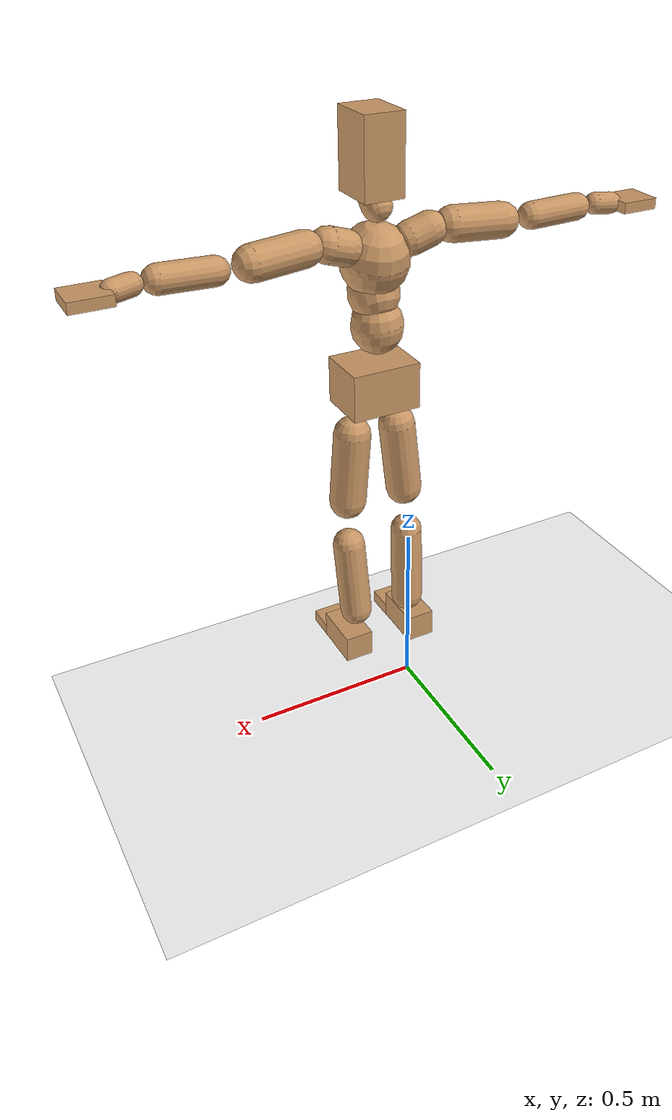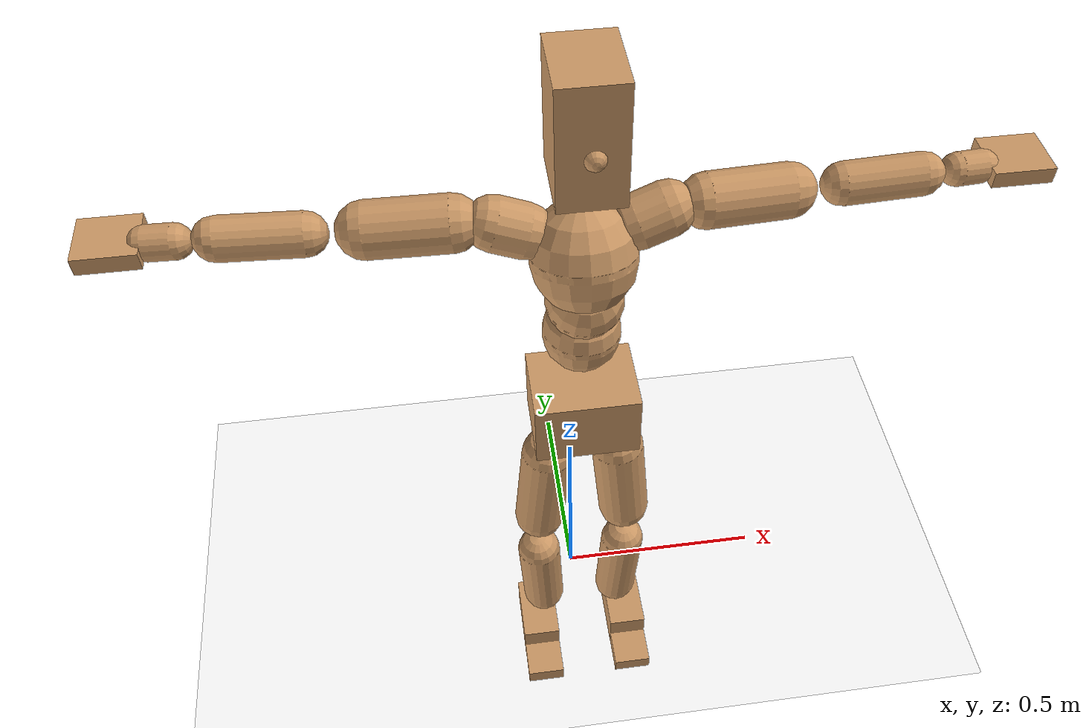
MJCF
<mujoco model="humanoid">
  <option integrator="implicitfast" />

  <visual>
    <global offwidth="1280" offheight="960" />
    <headlight active="1" ambient="0.34 0.34 0.34" diffuse="0.5 0.5 0.5" />
  </visual>

  <default>
    <joint damping="2" stiffness="2" armature="0.01" limited="true" solimplimit="0 .99 .01" />
    <geom condim="1" friction="0.7 0.005 0.0001" solimp=".99 .99 .003" solref="0.015 1" margin="0.001" rgba="0.8 0.6 .4 1" />
    <default class="smplcontact">
      <geom condim="3" friction="1. 0.005 0.0001" solref="0.015 1" solimp="0.98 0.98 0.001" priority="1" />
    </default>
    <default class="stiff_medium">
      <joint stiffness="10" />
    </default>
    <default class="stiff_medium_higher">
      <joint stiffness="50" />
    </default>
    <default class="stiff_high">
      <joint stiffness="100" />
    </default>
  </default>

  <asset>
    <texture type="skybox" builtin="gradient" rgb1="0.99 0.99 0.99" rgb2="0.608 0.828 0.892" width="100" />
    <texture builtin="flat" height="1278" mark="cross" markrgb="1 1 1" name="texgeom" random="0.01" rgb1="0.8 0.6 0.4" rgb2="0.8 0.6 0.4" type="cube" width="127" />
    <texture name="texplane" type="2d" builtin="checker" markrgb="1 1 1" rgb1="0.756 0.772 0.76" rgb2="0.6 0.6 0.6" width="100" height="100" />
    <material name="MatPlane" reflectance="0.5" texture="texplane" texrepeat="1 1" texuniform="true" />
    <material name="geom" texture="texgeom" texuniform="true" />
  </asset>

  <worldbody>
    <light name="tracking_light" pos="0 0 7" dir="0 0 -1" directional="true" cutoff="100" exponent="1" diffuse="1 1 1" specular="0.1 0.1 0.1" mode="trackcom" />
    <camera name="back" pos="0 3 2.4" xyaxes="-1 0 0 0 -1 2" mode="trackcom" />
    <camera name="side" pos="-3 0 2.4" xyaxes="0 -1 0 1 0 2" mode="trackcom" />
    <camera name="front_side" pos="-2.8 -2.8 0.8" xyaxes="0.5 -0.5 0 0.1 0.1 1" mode="trackcom" />
    <geom condim="3" name="floor" pos="0 0 0" rgba="1 1 1 1" size="100 100 .2" type="plane" material="MatPlane" />
    <body name="Pelvis" pos="-0.0018 -0.2233 0.93508" euler="90 0 0">
      <site name="Pelvis" size="0.01" />
      <freejoint name="Pelvis" />
      <geom type="box" pos="-0.0000 -0.0121 -0.0055" size="0.1069 0.0722 0.083" quat="1.0000 0.0000 0.0000 0.0000" density="3165.830099" name="Pelvis" />
      <body name="L_Hip" pos="0.0695 -0.0914 -0.0068">
        <joint name="L_Hip_x" type="hinge" pos="0 0 0" axis="1 0 0" stiffness="8.341732261904761" range="-160.0 22.92" class="stiff_medium" damping="12.446978705050496" armature="0.008254468763920438"/>
        <joint name="L_Hip_y" type="hinge" pos="0 0 0" axis="0 1 0" stiffness="8.330376904761906" range="-70.0 70.0" class="stiff_medium" damping="7.94201747582456" armature="0.007571763235616231"/>
        <joint name="L_Hip_z" type="hinge" pos="0 0 0" axis="0 0 1" stiffness="8.333033928571428" range="-28.65 90.0" class="stiff_medium" damping="8.294162655541587" armature="0.00825547270613048"/>
        <geom type="capsule" density="2040.816327" fromto="0.0069 -0.075 -0.0009 0.0274 -0.3002 -0.0036" size="0.0568875" name="L_Hip" />
        <body name="L_Knee" pos="0.0343 -0.3752 -0.0045">
          <joint name="L_Knee_x" type="hinge" pos="0 0 0" axis="1 0 0" range="-5.16 171.89" damping="6.555412535576464" armature="0.008129504383380762" stiffness="1.6519085714285715"/>
          <joint name="L_Knee_y" type="hinge" pos="0 0 0" axis="0 1 0" range="-4.58 6.88" damping="6.300997666629273" armature="0.0074570830718250995" stiffness="1.6637944761904762"/>
          <joint name="L_Knee_z" type="hinge" pos="0 0 0" axis="0 0 1" range="-6.88 4.58" damping="6.55550167999491" armature="0.008134285973594786" stiffness="1.6509824285714283"/>
          <geom type="capsule" density="1234.567901" fromto="-0.0027 -0.0796 -0.0087 -0.0109 -0.3184 -0.035" size="0.0500425" name="L_Knee" />
          <body name="L_Ankle" pos="-0.0136 -0.398 -0.0437">
            <joint name="L_Ankle_x" type="hinge" pos="0 0 0" axis="1 0 0" range="-45.84 45.84" class="stiff_medium" damping="4.629902022462091" armature="0.007523431495124429" stiffness="7.914529999999997"/>
            <joint name="L_Ankle_y" type="hinge" pos="0 0 0" axis="0 1 0" range="-74.48 22.92" class="stiff_medium" damping="2.3106454218604258" armature="0.007495471782158953" stiffness="7.914529999999997"/>
            <joint name="L_Ankle_z" type="hinge" pos="0 0 0" axis="0 0 1" range="-4.58 4.58" class="stiff_medium" damping="4.564515665454717" armature="0.007312430870879794" stiffness="7.914529999999997"/>
            <geom type="box" pos="0.0233 -0.0239 0.0242" size="0.0446775 0.04292 0.078625" quat="1.0000 0.0000 0.0000 0.0000" density="449.071558" name="L_Ankle" class="smplcontact" />
            <body name="L_Toe" pos="0.0264 -0.0558 0.1193">
              <joint name="L_Toe_x" type="hinge" pos="0 0 0" axis="1 0 0" range="-91.67 22.92" armature="0.007206296490440864" damping="1.510423116381485" stiffness="1.5829059999999995"/>
              <joint name="L_Toe_y" type="hinge" pos="0 0 0" axis="0 1 0" range="-4.58 4.58" armature="0.007077958770581487" damping="1.4969130506282626" stiffness="1.5829059999999995"/>
              <joint name="L_Toe_z" type="hinge" pos="0 0 0" axis="0 0 1" range="-4.58 4.58" armature="0.006818466808771082" damping="1.4692169358134008" stiffness="1.5829059999999995"/>
              <geom type="box" pos="-0.003 0.0055 0.0248" size="0.044215 0.0185 0.04588" quat="1.0000 0.0000 0.0000 0.0000" density="423.206892" name="L_Toe" class="smplcontact" />
            </body>
          </body>
        </body>
      </body>
      <body name="R_Hip" pos="-0.0677 -0.0905 -0.0043">
        <joint name="R_Hip_x" type="hinge" pos="0 0 0" axis="1 0 0" stiffness="8.341732261904761" range="-160.0 22.92" class="stiff_medium" damping="12.446978705050496" armature="0.008254468763920438"/>
        <joint name="R_Hip_y" type="hinge" pos="0 0 0" axis="0 1 0" stiffness="8.330376904761906" range="-70.0 70.0" class="stiff_medium" damping="7.94201747582456" armature="0.007571763235616231"/>
        <joint name="R_Hip_z" type="hinge" pos="0 0 0" axis="0 0 1" stiffness="8.333033928571428" range="-90.0 28.65" class="stiff_medium" damping="8.294162655541587" armature="0.00825547270613048"/>
        <geom type="capsule" density="2040.816327" fromto="-0.0077 -0.0765 -0.0018 -0.0306 -0.3061 -0.0071" size="0.056055" name="R_Hip" />
        <body name="R_Knee" pos="-0.0383 -0.3826 -0.0089">
          <joint name="R_Knee_x" type="hinge" pos="0 0 0" axis="1 0 0" range="-5.16 171.89" damping="6.555412535576464" armature="0.008129504383380762" stiffness="1.6519085714285715"/>
          <joint name="R_Knee_y" type="hinge" pos="0 0 0" axis="0 1 0" range="-6.88 4.58" damping="6.300997666629273" armature="0.0074570830718250995" stiffness="1.6637944761904762"/>
          <joint name="R_Knee_z" type="hinge" pos="0 0 0" axis="0 0 1" range="-4.58 6.88" damping="6.55550167999491" armature="0.008134285973594786" stiffness="1.6509824285714283"/>
          <geom type="capsule" density="1234.567901" fromto="0.0032 -0.0797 -0.0085 0.0126 -0.3187 -0.0338" size="0.0500425" name="R_Knee" />
          <body name="R_Ankle" pos="0.0158 -0.3984 -0.0423">
            <joint name="R_Ankle_x" type="hinge" pos="0 0 0" axis="1 0 0" range="-45.84 45.84" class="stiff_medium" damping="4.629902022462091" armature="0.007523431495124429" stiffness="7.914529999999997"/>
            <joint name="R_Ankle_y" type="hinge" pos="0 0 0" axis="0 1 0" range="-22.92 74.48" class="stiff_medium" damping="2.3106454218604258" armature="0.007495471782158953" stiffness="7.914529999999997"/>
            <joint name="R_Ankle_z" type="hinge" pos="0 0 0" axis="0 0 1" range="-4.58 4.58" class="stiff_medium" damping="4.564515665454717" armature="0.007312430870879794" stiffness="7.914529999999997"/>
            <geom type="box" pos="-0.0212 -0.0174 0.0256" size="0.0446775 0.044215 0.0800125" quat="1.0000 0.0000 0.0000 0.0000" density="434.700981" name="R_Ankle" class="smplcontact" />
            <body name="R_Toe" pos="-0.0254 -0.0481 0.1233">
              <joint name="R_Toe_x" type="hinge" pos="0 0 0" axis="1 0 0" range="-91.67 22.92" armature="0.007206296490440864" damping="1.510423116381485" stiffness="1.5829059999999995"/>
              <joint name="R_Toe_y" type="hinge" pos="0 0 0" axis="0 1 0" range="-4.58 4.58" armature="0.007077958770581487" damping="1.4969130506282626" stiffness="1.5829059999999995"/>
              <joint name="R_Toe_z" type="hinge" pos="0 0 0" axis="0 0 1" range="-4.58 4.58" armature="0.006818466808771082" damping="1.4692169358134008" stiffness="1.5829059999999995"/>
              <geom type="box" pos="0.0042 0.0045 0.0227" size="0.0443075 0.01998 0.0456025" quat="1.0000 0.0000 0.0000 0.0000" density="407.384095" name="R_Toe" class="smplcontact" />
            </body>
          </body>
        </body>
      </body>
      <body name="Torso" pos="-0.0025 0.109 -0.0267">
        <joint name="Torso_x" type="hinge" pos="0 0 0" axis="1 0 0" range="-25.78 57.3" class="stiff_medium" damping="15.000000000000004" armature="0.010000000000000005" stiffness="10.0"/>
        <joint name="Torso_y" type="hinge" pos="0 0 0" axis="0 1 0" range="-57.3 57.3" class="stiff_high" damping="20.0" armature="0.010000000000000002" stiffness="100.0"/>
        <joint name="Torso_z" type="hinge" pos="0 0 0" axis="0 0 1" range="-34.38 34.38" class="stiff_high" damping="19.999999999999996" armature="0.009999999999999998" stiffness="100.0"/>
        <geom type="capsule" density="2040.816327" fromto="0.0025 0.0608 0.0005 0.003 0.0743 0.0006" size="0.0769" name="Torso" />
        <body name="Spine" pos="0.0055 0.1352 0.0011">
          <joint name="Spine_x" type="hinge" pos="0 0 0" axis="1 0 0" stiffness="10.0" range="-25.78 57.3" class="stiff_medium" damping="15.000000000000007" armature="0.01000000000000001"/>
          <joint name="Spine_y" type="hinge" pos="0 0 0" axis="0 1 0" stiffness="10.0" range="-57.3 57.3" class="stiff_high" damping="8.0" armature="0.010000000000000002"/>
          <joint name="Spine_z" type="hinge" pos="0 0 0" axis="0 0 1" stiffness="20.0" range="-34.38 34.38" class="stiff_high" damping="12.0" armature="0.010000000000000002"/>
          <geom type="capsule" density="2040.816327" fromto="0.0007 0.0238 0.0114 0.0008 0.0291 0.014" size="0.0755" name="Spine" />
          <body name="Chest" pos="0.0015 0.0529 0.0254">
            <joint name="Chest_x" type="hinge" pos="0 0 0" axis="1 0 0" stiffness="10.0" range="-25.78 57.3" class="stiff_medium" damping="15.0" armature="0.010000000000000002"/>
            <joint name="Chest_y" type="hinge" pos="0 0 0" axis="0 1 0" stiffness="10.0" range="-57.3 57.3" class="stiff_high" damping="8.0" armature="0.010000000000000002"/>
            <joint name="Chest_z" type="hinge" pos="0 0 0" axis="0 0 1" stiffness="20.0" range="-34.38 34.38" class="stiff_high" damping="12.0" armature="0.010000000000000002"/>
            <geom type="capsule" density="2040.816327" fromto="-0.0009 0.0682 -0.0173 -0.001 0.0833 -0.0212" size="0.1002" name="Chest" />
            <body name="Neck" pos="-0.0028 0.2139 -0.0429">
              <joint name="Neck_x" type="hinge" pos="0 0 0" axis="1 0 0" range="-28.65 57.3" class="stiff_medium_higher" damping="10.000000000000007" armature="0.010000000000000016" stiffness="50.0"/>
              <joint name="Neck_y" type="hinge" pos="0 0 0" axis="0 1 0" range="-40.11 40.11" class="stiff_medium_higher" damping="10.0" armature="0.01" stiffness="50.0"/>
              <joint name="Neck_z" type="hinge" pos="0 0 0" axis="0 0 1" range="-40.11 40.11" class="stiff_medium_higher" damping="10.000000000000002" armature="0.010000000000000005" stiffness="50.0"/>
              <geom type="capsule" density="1000" fromto="0.001 0.013 0.0103 0.0041 0.052 0.0411" size="0.0436" name="Neck" />
              <body name="Head" pos="0.0052 0.065 0.0513">
                <joint name="Head_x" type="hinge" pos="0 0 0" axis="1 0 0" range="-28.65 57.3" class="stiff_medium_higher" damping="1.9999999999999996" armature="0.009999999999999995" stiffness="50.0"/>
                <joint name="Head_y" type="hinge" pos="0 0 0" axis="0 1 0" range="-40.11 40.11" class="stiff_medium_higher" damping="1.9999999999999998" armature="0.009999999999999998" stiffness="50.0"/>
                <joint name="Head_z" type="hinge" pos="0 0 0" axis="0 0 1" range="-40.11 40.11" class="stiff_medium_higher" damping="1.999999999999997" armature="0.009999999999999969" stiffness="50.0"/>
                <geom type="box" pos="-0.0042 0.0876 -0.0116" size="0.0606 0.1154 0.076" quat="1.0000 0.0000 0.0000 0.0000" density="1018.069894" name="Head" />
                <geom type="capsule" name="nose" size="0.02 0.01" pos="0 0.07 0.05" quat="1 0 0 0" mass="0" contype="0" conaffinity="0" />
              </body>
            </body>
            <body name="L_Thorax" pos="0.0788 0.1217 -0.0341">
              <joint name="L_Thorax_x" type="hinge" pos="0 0 0" axis="1 0 0" range="-10.89 4.58" class="stiff_medium_higher" damping="19.99999999999993" armature="0.009999999999999929" stiffness="50.0"/>
              <joint name="L_Thorax_y" type="hinge" pos="0 0 0" axis="0 1 0" range="-28.65 17.19" class="stiff_medium_higher" damping="20.0" armature="0.010000000000000002" stiffness="50.0"/>
              <joint name="L_Thorax_z" type="hinge" pos="0 0 0" axis="0 0 1" range="-31.51 40.11" class="stiff_medium_higher" damping="19.999999999999996" armature="0.009999999999999998" stiffness="50.0"/>
              <geom type="capsule" density="1000" fromto="0.0182 0.0061 -0.0018 0.0728 0.0244 -0.0071" size="0.0521" name="L_Thorax" />
              <body name="L_Shoulder" pos="0.091 0.0305 -0.0089">
                <joint name="L_Shoulder_x" type="hinge" pos="0 0 0" axis="1 0 0" range="-97.4 97.4" class="stiff_medium" damping="5.999999999999988" armature="0.00999999999999996" stiffness="10.0"/>
                <joint name="L_Shoulder_y" type="hinge" pos="0 0 0" axis="0 1 0" range="-108.86 80.21" class="stiff_medium" damping="6.0" armature="0.010000000000000002" stiffness="10.0"/>
                <joint name="L_Shoulder_z" type="hinge" pos="0 0 0" axis="0 0 1" range="-97.4 85.94" class="stiff_medium" damping="6.0" armature="0.010000000000000002" stiffness="10.0"/>
                <geom type="capsule" density="1000" fromto="0.0519 -0.0026 -0.0055 0.2077 -0.0102 -0.022" size="0.0517" name="L_Shoulder" />
                <body name="L_Elbow" pos="0.2596 -0.0128 -0.0275">
                  <joint name="L_Elbow_x" type="hinge" pos="0 0 0" axis="1 0 0" range="-17.19 4.58" damping="4.999999999999936" armature="0.009999999999999745" stiffness="2.0"/>
                  <joint name="L_Elbow_y" type="hinge" pos="0 0 0" axis="0 1 0" range="-180.0 17.19" damping="5.000000000000008" armature="0.010000000000000031" stiffness="2.0"/>
                  <joint name="L_Elbow_z" type="hinge" pos="0 0 0" axis="0 0 1" range="-100.84 4.58" damping="5.0000000000000036" armature="0.010000000000000014" stiffness="2.0"/>
                  <geom type="capsule" density="1000" fromto="0.0498 0.0018 -0.0002 0.1994 0.0072 -0.0009" size="0.0405" name="L_Elbow" />
                  <body name="L_Wrist" pos="0.2492 0.009 -0.0012">
                    <joint name="L_Wrist_x" type="hinge" pos="0 0 0" axis="1 0 0" range="-180.0 22.92" armature="0.009999999999999683" damping="1.9999999999999682" stiffness="2.0"/>
                    <joint name="L_Wrist_y" type="hinge" pos="0 0 0" axis="0 1 0" range="-17.19 17.19" armature="0.010000000000000085" damping="2.0000000000000084" stiffness="2.0"/>
                    <joint name="L_Wrist_z" type="hinge" pos="0 0 0" axis="0 0 1" range="-22.92 22.92" armature="0.010000000000000134" damping="2.0000000000000133" stiffness="2.0"/>
                    <geom type="capsule" density="1000" fromto="0.0168 -0.0016 -0.003 0.0672 -0.0065 -0.012" size="0.0318" name="L_Wrist" class="smplcontact" />
                    <body name="L_Hand" pos="0.084 -0.0082 -0.0149">
                      <joint name="L_Hand_x" type="hinge" pos="0 0 0" axis="1 0 0" range="-17.19 17.19" armature="0.010000000000000045" damping="2.0000000000000044" stiffness="2.0"/>
                      <joint name="L_Hand_y" type="hinge" pos="0 0 0" axis="0 1 0" range="-51.57 51.57" armature="0.010000000000000547" damping="2.0000000000000546" stiffness="2.0"/>
                      <joint name="L_Hand_z" type="hinge" pos="0 0 0" axis="0 0 1" range="-91.67 91.67" armature="0.010000000000000394" damping="2.000000000000039" stiffness="2.0"/>
                      <geom type="box" pos="0.0493 0.001 -0.0058" size="0.0585 0.0158 0.0538" quat="1.0000 0.0000 0.0000 0.0000" density="400.552564" name="L_Hand" class="smplcontact" />
                    </body>
                  </body>
                </body>
              </body>
            </body>
            <body name="R_Thorax" pos="-0.0818 0.1188 -0.0386">
              <joint name="R_Thorax_x" type="hinge" pos="0 0 0" axis="1 0 0" range="-10.89 4.58" class="stiff_medium_higher" damping="19.99999999999993" armature="0.009999999999999929" stiffness="50.0"/>
              <joint name="R_Thorax_y" type="hinge" pos="0 0 0" axis="0 1 0" range="-17.19 28.65" class="stiff_medium_higher" damping="20.0" armature="0.010000000000000002" stiffness="50.0"/>
              <joint name="R_Thorax_z" type="hinge" pos="0 0 0" axis="0 0 1" range="-40.11 31.51" class="stiff_medium_higher" damping="19.999999999999996" armature="0.009999999999999998" stiffness="50.0"/>
              <geom type="capsule" density="1000" fromto="-0.0192 0.0065 -0.0018 -0.0768 0.026 -0.0073" size="0.0511" name="R_Thorax" />
              <body name="R_Shoulder" pos="-0.096 0.0326 -0.0091">
                <joint name="R_Shoulder_x" type="hinge" pos="0 0 0" axis="1 0 0" range="-97.4 97.4" class="stiff_medium" damping="5.999999999999988" armature="0.00999999999999996" stiffness="10.0"/>
                <joint name="R_Shoulder_y" type="hinge" pos="0 0 0" axis="0 1 0" range="-80.21 108.86" class="stiff_medium" damping="6.0" armature="0.010000000000000002" stiffness="10.0"/>
                <joint name="R_Shoulder_z" type="hinge" pos="0 0 0" axis="0 0 1" range="-85.94 97.4" class="stiff_medium" damping="6.0" armature="0.010000000000000002" stiffness="10.0"/>
                <geom type="capsule" density="1000" fromto="-0.0507 -0.0027 -0.0043 -0.203 -0.0107 -0.0171" size="0.0531" name="R_Shoulder" />
                <body name="R_Elbow" pos="-0.2537 -0.0133 -0.0214">
                  <joint name="R_Elbow_x" type="hinge" pos="0 0 0" axis="1 0 0" range="-17.19 4.58" damping="4.999999999999936" armature="0.009999999999999745" stiffness="2.0"/>
                  <joint name="R_Elbow_y" type="hinge" pos="0 0 0" axis="0 1 0" range="-17.19 180.0" damping="5.000000000000008" armature="0.010000000000000031" stiffness="2.0"/>
                  <joint name="R_Elbow_z" type="hinge" pos="0 0 0" axis="0 0 1" range="-4.58 100.84" damping="5.0000000000000036" armature="0.010000000000000014" stiffness="2.0"/>
                  <geom type="capsule" density="1000" fromto="-0.0511 0.0016 -0.0011 -0.2042 0.0062 -0.0044" size="0.0408" name="R_Elbow" />
                  <body name="R_Wrist" pos="-0.2553 0.0078 -0.0056">
                    <joint name="R_Wrist_x" type="hinge" pos="0 0 0" axis="1 0 0" range="-180.0 22.92" armature="0.009999999999999683" damping="1.9999999999999682" stiffness="2.0"/>
                    <joint name="R_Wrist_y" type="hinge" pos="0 0 0" axis="0 1 0" range="-17.19 17.19" armature="0.010000000000000085" damping="2.0000000000000084" stiffness="2.0"/>
                    <joint name="R_Wrist_z" type="hinge" pos="0 0 0" axis="0 0 1" range="-22.92 22.92" armature="0.010000000000000134" damping="2.0000000000000133" stiffness="2.0"/>
                    <geom type="capsule" density="1000" fromto="-0.0169 -0.0012 -0.0021 -0.0677 -0.0049 -0.0083" size="0.0326" name="R_Wrist" class="smplcontact" />
                    <body name="R_Hand" pos="-0.0846 -0.0061 -0.0103">
                      <joint name="R_Hand_x" type="hinge" pos="0 0 0" axis="1 0 0" range="-17.19 17.19" armature="0.010000000000000045" damping="2.0000000000000044" stiffness="2.0"/>
                      <joint name="R_Hand_y" type="hinge" pos="0 0 0" axis="0 1 0" range="-51.57 51.57" armature="0.010000000000000547" damping="2.0000000000000546" stiffness="2.0"/>
                      <joint name="R_Hand_z" type="hinge" pos="0 0 0" axis="0 0 1" range="-91.67 91.67" armature="0.010000000000000394" damping="2.000000000000039" stiffness="2.0"/>
                      <geom type="box" pos="-0.0462 -0.0009 -0.0079" size="0.0569 0.0164 0.0546" quat="1.0000 0.0000 0.0000 0.0000" density="403.679611" name="R_Hand" class="smplcontact" />
                    </body>
                  </body>
                </body>
              </body>
            </body>
          </body>
        </body>
      </body>
    </body>
  </worldbody>
  <actuator>
    <general name="L_Hip_x" joint="L_Hip_x" biastype="affine" gainprm="239.68304654957979" biasprm="-179.61815012582767 -150.15118071428572 -1.6595971606733995" ctrllimited="true" ctrlrange="-1 1" forcerange="-300.30236142857143 300.30236142857143" />
    <general name="L_Hip_y" joint="L_Hip_y" biastype="affine" gainprm="183.19455619943855" biasprm="0.0 -149.94678428571427 -1.588403495164912" ctrllimited="true" ctrlrange="-1 1" forcerange="-299.89356857142855 299.89356857142855" />
    <general name="L_Hip_z" joint="L_Hip_z" biastype="affine" gainprm="155.30690665606923" biasprm="80.3040768929612 -149.9946107142857 -1.6588325311083174" ctrllimited="true" ctrlrange="-1 1" forcerange="-299.9892214285714 299.9892214285714" />
    <general name="L_Knee_x" joint="L_Knee_x" biastype="affine" gainprm="229.70572488169398" biasprm="216.3164953940968 -148.67177142857145 -1.638853133894116" ctrllimited="true" ctrlrange="-1 1" forcerange="-297.3435428571429 297.3435428571429" />
    <general name="L_Knee_y" joint="L_Knee_y" biastype="affine" gainprm="14.97525330247959" biasprm="3.005504589502885 -149.74150285714285 -1.5752494166573183" ctrllimited="true" ctrlrange="-1 1" forcerange="-299.4830057142857 299.4830057142857" />
    <general name="L_Knee_z" joint="L_Knee_z" biastype="affine" gainprm="14.859936380128715" biasprm="-2.9823607045633547 -148.58841857142855 -1.6388754199987274" ctrllimited="true" ctrlrange="-1 1" forcerange="-297.1768371428571 297.1768371428571" />
    <general name="L_Ankle_x" joint="L_Ankle_x" biastype="affine" gainprm="56.98881356617992" biasprm="0.0 -71.23076999999998 -1.5433006741540305" ctrllimited="true" ctrlrange="-1 1" forcerange="-142.46153999999996 142.46153999999996" />
    <general name="L_Ankle_y" joint="L_Ankle_y" biastype="affine" gainprm="60.54439835674001" biasprm="-32.049991573650054 -71.23076999999998 -1.5404302812402837" ctrllimited="true" ctrlrange="-1 1" forcerange="-142.46153999999996 142.46153999999996" />
    <general name="L_Ankle_z" joint="L_Ankle_z" biastype="affine" gainprm="5.693908510757067" biasprm="0.0 -71.23076999999998 -1.5215052218182392" ctrllimited="true" ctrlrange="-1 1" forcerange="-142.46153999999996 142.46153999999996" />
    <general name="L_Toe_x" joint="L_Toe_x" biastype="affine" gainprm="56.98384072031899" biasprm="-34.18831529384702 -56.98461599999998 -0.6041692465525941" ctrllimited="true" ctrlrange="-1 1" forcerange="-113.96923199999996 113.96923199999996" />
    <general name="L_Toe_y" joint="L_Toe_y" biastype="affine" gainprm="4.555126808605654" biasprm="0.0 -56.98461599999998 -0.5987652202513051" ctrllimited="true" ctrlrange="-1 1" forcerange="-113.96923199999996 113.96923199999996" />
    <general name="L_Toe_z" joint="L_Toe_z" biastype="affine" gainprm="4.555126808605654" biasprm="0.0 -56.98461599999998 -0.5876867743253603" ctrllimited="true" ctrlrange="-1 1" forcerange="-113.96923199999996 113.96923199999996" />
    <general name="R_Hip_x" joint="R_Hip_x" biastype="affine" gainprm="239.68304654957979" biasprm="-179.61815012582767 -150.15118071428572 -1.6595971606733995" ctrllimited="true" ctrlrange="-1 1" forcerange="-300.30236142857143 300.30236142857143" />
    <general name="R_Hip_y" joint="R_Hip_y" biastype="affine" gainprm="183.19455619943855" biasprm="0.0 -149.94678428571427 -1.588403495164912" ctrllimited="true" ctrlrange="-1 1" forcerange="-299.89356857142855 299.89356857142855" />
    <general name="R_Hip_z" joint="R_Hip_z" biastype="affine" gainprm="155.30690665606923" biasprm="-80.3040768929612 -149.9946107142857 -1.6588325311083174" ctrllimited="true" ctrlrange="-1 1" forcerange="-299.9892214285714 299.9892214285714" />
    <general name="R_Knee_x" joint="R_Knee_x" biastype="affine" gainprm="229.70572488169398" biasprm="216.3164953940968 -148.67177142857145 -1.638853133894116" ctrllimited="true" ctrlrange="-1 1" forcerange="-297.3435428571429 297.3435428571429" />
    <general name="R_Knee_y" joint="R_Knee_y" biastype="affine" gainprm="14.97525330247959" biasprm="-3.005504589502885 -149.74150285714285 -1.5752494166573183" ctrllimited="true" ctrlrange="-1 1" forcerange="-299.4830057142857 299.4830057142857" />
    <general name="R_Knee_z" joint="R_Knee_z" biastype="affine" gainprm="14.859936380128715" biasprm="2.9823607045633547 -148.58841857142855 -1.6388754199987274" ctrllimited="true" ctrlrange="-1 1" forcerange="-297.1768371428571 297.1768371428571" />
    <general name="R_Ankle_x" joint="R_Ankle_x" biastype="affine" gainprm="56.98881356617992" biasprm="0.0 -71.23076999999998 -1.5433006741540305" ctrllimited="true" ctrlrange="-1 1" forcerange="-142.46153999999996 142.46153999999996" />
    <general name="R_Ankle_y" joint="R_Ankle_y" biastype="affine" gainprm="60.54439835674001" biasprm="32.049991573650054 -71.23076999999998 -1.5404302812402837" ctrllimited="true" ctrlrange="-1 1" forcerange="-142.46153999999996 142.46153999999996" />
    <general name="R_Ankle_z" joint="R_Ankle_z" biastype="affine" gainprm="5.693908510757067" biasprm="0.0 -71.23076999999998 -1.5215052218182392" ctrllimited="true" ctrlrange="-1 1" forcerange="-142.46153999999996 142.46153999999996" />
    <general name="R_Toe_x" joint="R_Toe_x" biastype="affine" gainprm="56.98384072031899" biasprm="-34.18831529384702 -56.98461599999998 -0.6041692465525941" ctrllimited="true" ctrlrange="-1 1" forcerange="-113.96923199999996 113.96923199999996" />
    <general name="R_Toe_y" joint="R_Toe_y" biastype="affine" gainprm="4.555126808605654" biasprm="0.0 -56.98461599999998 -0.5987652202513051" ctrllimited="true" ctrlrange="-1 1" forcerange="-113.96923199999996 113.96923199999996" />
    <general name="R_Toe_z" joint="R_Toe_z" biastype="affine" gainprm="4.555126808605654" biasprm="0.0 -56.98461599999998 -0.5876867743253603" ctrllimited="true" ctrlrange="-1 1" forcerange="-113.96923199999996 113.96923199999996" />
    <general name="Torso_x" joint="Torso_x" biastype="affine" gainprm="174.00234510682668" biasprm="66.0153336274335 -240.0 -4.000000000000001" ctrllimited="true" ctrlrange="-1 1" forcerange="-360.0 360.0" />
    <general name="Torso_y" joint="Torso_y" biastype="affine" gainprm="240.0176787342602" biasprm="0.0 -240.0 -4.0" ctrllimited="true" ctrlrange="-1 1" forcerange="-360.0 360.0" />
    <general name="Torso_z" joint="Torso_z" biastype="affine" gainprm="144.01060724055614" biasprm="0.0 -240.0 -3.9999999999999996" ctrllimited="true" ctrlrange="-1 1" forcerange="-360.0 360.0" />
    <general name="Spine_x" joint="Spine_x" biastype="affine" gainprm="174.00234510682668" biasprm="66.0153336274335 -240.0 -4.000000000000002" ctrllimited="true" ctrlrange="-1 1" forcerange="-360.0 360.0" />
    <general name="Spine_y" joint="Spine_y" biastype="affine" gainprm="240.0176787342602" biasprm="0.0 -240.0 -4.0" ctrllimited="true" ctrlrange="-1 1" forcerange="-360.0 360.0" />
    <general name="Spine_z" joint="Spine_z" biastype="affine" gainprm="144.01060724055614" biasprm="0.0 -240.0 -4.0" ctrllimited="true" ctrlrange="-1 1" forcerange="-360.0 360.0" />
    <general name="Chest_x" joint="Chest_x" biastype="affine" gainprm="174.00234510682668" biasprm="66.0153336274335 -240.0 -4.0" ctrllimited="true" ctrlrange="-1 1" forcerange="-360.0 360.0" />
    <general name="Chest_y" joint="Chest_y" biastype="affine" gainprm="240.0176787342602" biasprm="0.0 -240.0 -4.0" ctrllimited="true" ctrlrange="-1 1" forcerange="-360.0 360.0" />
    <general name="Chest_z" joint="Chest_z" biastype="affine" gainprm="144.01060724055614" biasprm="0.0 -240.0 -4.0" ctrllimited="true" ctrlrange="-1 1" forcerange="-360.0 360.0" />
    <general name="Neck_x" joint="Neck_x" biastype="affine" gainprm="27.00198885760427" biasprm="9.000662952534757 -36.0 -0.8000000000000006" ctrllimited="true" ctrlrange="-1 1" forcerange="-72.0 72.0" />
    <general name="Neck_y" joint="Neck_y" biastype="affine" gainprm="25.20185626709732" biasprm="0.0 -36.0 -0.8" ctrllimited="true" ctrlrange="-1 1" forcerange="-72.0 72.0" />
    <general name="Neck_z" joint="Neck_z" biastype="affine" gainprm="25.20185626709732" biasprm="0.0 -36.0 -0.8000000000000003" ctrllimited="true" ctrlrange="-1 1" forcerange="-72.0 72.0" />
    <general name="Head_x" joint="Head_x" biastype="affine" gainprm="18.001325905069514" biasprm="6.000441968356505 -24.0 -0.7999999999999998" ctrllimited="true" ctrlrange="-1 1" forcerange="-48.0 48.0" />
    <general name="Head_y" joint="Head_y" biastype="affine" gainprm="16.801237511398213" biasprm="0.0 -24.0 -0.7999999999999999" ctrllimited="true" ctrlrange="-1 1" forcerange="-48.0 48.0" />
    <general name="Head_z" joint="Head_z" biastype="affine" gainprm="16.801237511398213" biasprm="0.0 -24.0 -0.7999999999999988" ctrllimited="true" ctrlrange="-1 1" forcerange="-48.0 48.0" />
    <general name="L_Thorax_x" joint="L_Thorax_x" biastype="affine" gainprm="16.200146117011364" biasprm="-6.6078165480505335 -120.0 -1.5999999999999943" ctrllimited="true" ctrlrange="-1 1" forcerange="-240.0 240.0" />
    <general name="L_Thorax_y" joint="L_Thorax_y" biastype="affine" gainprm="48.00353574685204" biasprm="-12.00088393671301 -120.0 -1.6" ctrllimited="true" ctrlrange="-1 1" forcerange="-240.0 240.0" />
    <general name="L_Thorax_z" joint="L_Thorax_z" biastype="affine" gainprm="75.00028861670033" biasprm="9.00589894029074 -120.0 -1.5999999999999999" ctrllimited="true" ctrlrange="-1 1" forcerange="-240.0 240.0" />
    <general name="L_Shoulder_x" joint="L_Shoulder_x" biastype="affine" gainprm="81.5976331892389" biasprm="0.0 -48.0 -1.599999999999997" ctrllimited="true" ctrlrange="-1 1" forcerange="-96.0 96.0" />
    <general name="L_Shoulder_y" joint="L_Shoulder_y" biastype="affine" gainprm="79.19745640189629" biasprm="-12.00088393671301 -48.0 -1.6" ctrllimited="true" ctrlrange="-1 1" forcerange="-96.0 96.0" />
    <general name="L_Shoulder_z" joint="L_Shoulder_z" biastype="affine" gainprm="76.79727961455369" biasprm="-4.800353574685214 -48.0 -1.6" ctrllimited="true" ctrlrange="-1 1" forcerange="-96.0 96.0" />
    <general name="L_Elbow_x" joint="L_Elbow_x" biastype="affine" gainprm="13.67849441372996" biasprm="-7.923096672353461 -72.0 -0.7999999999999898" ctrllimited="true" ctrlrange="-1 1" forcerange="-144.0 144.0" />
    <general name="L_Elbow_y" joint="L_Elbow_y" biastype="affine" gainprm="123.89813107227425" biasprm="-102.29653998619085 -72.0 -0.8000000000000013" ctrllimited="true" ctrlrange="-1 1" forcerange="-144.0 144.0" />
    <general name="L_Elbow_z" joint="L_Elbow_z" biastype="affine" gainprm="66.23733950828719" biasprm="-60.4819417669107 -72.0 -0.8000000000000006" ctrllimited="true" ctrlrange="-1 1" forcerange="-144.0 144.0" />
    <general name="L_Wrist_x" joint="L_Wrist_x" biastype="affine" gainprm="21.24973270888136" biasprm="-16.449379134196157 -12.0 -0.7999999999999874" ctrllimited="true" ctrlrange="-1 1" forcerange="-24.0 24.0" />
    <general name="L_Wrist_y" joint="L_Wrist_y" biastype="affine" gainprm="3.6002651810139037" biasprm="0.0 -12.0 -0.8000000000000034" ctrllimited="true" ctrlrange="-1 1" forcerange="-24.0 24.0" />
    <general name="L_Wrist_z" joint="L_Wrist_z" biastype="affine" gainprm="4.800353574685205" biasprm="0.0 -12.0 -0.8000000000000054" ctrllimited="true" ctrlrange="-1 1" forcerange="-24.0 24.0" />
    <general name="L_Hand_x" joint="L_Hand_x" biastype="affine" gainprm="3.6002651810139037" biasprm="0.0 -12.0 -0.8000000000000018" ctrllimited="true" ctrlrange="-1 1" forcerange="-24.0 24.0" />
    <general name="L_Hand_y" joint="L_Hand_y" biastype="affine" gainprm="10.800795543041708" biasprm="0.0 -12.0 -0.8000000000000219" ctrllimited="true" ctrlrange="-1 1" forcerange="-24.0 24.0" />
    <general name="L_Hand_z" joint="L_Hand_z" biastype="affine" gainprm="19.199319903638422" biasprm="0.0 -12.0 -0.8000000000000157" ctrllimited="true" ctrlrange="-1 1" forcerange="-24.0 24.0" />
    <general name="R_Thorax_x" joint="R_Thorax_x" biastype="affine" gainprm="16.200146117011364" biasprm="-6.6078165480505335 -120.0 -1.5999999999999943" ctrllimited="true" ctrlrange="-1 1" forcerange="-240.0 240.0" />
    <general name="R_Thorax_y" joint="R_Thorax_y" biastype="affine" gainprm="48.00353574685204" biasprm="12.000883936713002 -120.0 -1.6" ctrllimited="true" ctrlrange="-1 1" forcerange="-240.0 240.0" />
    <general name="R_Thorax_z" joint="R_Thorax_z" biastype="affine" gainprm="75.00028861670033" biasprm="-9.00589894029074 -120.0 -1.5999999999999999" ctrllimited="true" ctrlrange="-1 1" forcerange="-240.0 240.0" />
    <general name="R_Shoulder_x" joint="R_Shoulder_x" biastype="affine" gainprm="81.5976331892389" biasprm="0.0 -48.0 -1.599999999999997" ctrllimited="true" ctrlrange="-1 1" forcerange="-96.0 96.0" />
    <general name="R_Shoulder_y" joint="R_Shoulder_y" biastype="affine" gainprm="79.19745640189629" biasprm="12.00088393671301 -48.0 -1.6" ctrllimited="true" ctrlrange="-1 1" forcerange="-96.0 96.0" />
    <general name="R_Shoulder_z" joint="R_Shoulder_z" biastype="affine" gainprm="76.79727961455369" biasprm="4.800353574685204 -48.0 -1.6" ctrllimited="true" ctrlrange="-1 1" forcerange="-96.0 96.0" />
    <general name="R_Elbow_x" joint="R_Elbow_x" biastype="affine" gainprm="13.67849441372996" biasprm="-7.923096672353461 -72.0 -0.7999999999999898" ctrllimited="true" ctrlrange="-1 1" forcerange="-144.0 144.0" />
    <general name="R_Elbow_y" joint="R_Elbow_y" biastype="affine" gainprm="123.89813107227425" biasprm="102.29653998619085 -72.0 -0.8000000000000013" ctrllimited="true" ctrlrange="-1 1" forcerange="-144.0 144.0" />
    <general name="R_Elbow_z" joint="R_Elbow_z" biastype="affine" gainprm="66.23733950828719" biasprm="60.481941766910694 -72.0 -0.8000000000000006" ctrllimited="true" ctrlrange="-1 1" forcerange="-144.0 144.0" />
    <general name="R_Wrist_x" joint="R_Wrist_x" biastype="affine" gainprm="21.24973270888136" biasprm="-16.449379134196157 -12.0 -0.7999999999999874" ctrllimited="true" ctrlrange="-1 1" forcerange="-24.0 24.0" />
    <general name="R_Wrist_y" joint="R_Wrist_y" biastype="affine" gainprm="3.6002651810139037" biasprm="0.0 -12.0 -0.8000000000000034" ctrllimited="true" ctrlrange="-1 1" forcerange="-24.0 24.0" />
    <general name="R_Wrist_z" joint="R_Wrist_z" biastype="affine" gainprm="4.800353574685205" biasprm="0.0 -12.0 -0.8000000000000054" ctrllimited="true" ctrlrange="-1 1" forcerange="-24.0 24.0" />
    <general name="R_Hand_x" joint="R_Hand_x" biastype="affine" gainprm="3.6002651810139037" biasprm="0.0 -12.0 -0.8000000000000018" ctrllimited="true" ctrlrange="-1 1" forcerange="-24.0 24.0" />
    <general name="R_Hand_y" joint="R_Hand_y" biastype="affine" gainprm="10.800795543041708" biasprm="0.0 -12.0 -0.8000000000000219" ctrllimited="true" ctrlrange="-1 1" forcerange="-24.0 24.0" />
    <general name="R_Hand_z" joint="R_Hand_z" biastype="affine" gainprm="19.199319903638422" biasprm="0.0 -12.0 -0.8000000000000157" ctrllimited="true" ctrlrange="-1 1" forcerange="-24.0 24.0" />
  </actuator>
  <contact>
    <exclude body1="Torso" body2="Chest" />
    <exclude body1="Head" body2="Chest" />
    <exclude body1="R_Knee" body2="R_Toe" />
    <exclude body1="R_Knee" body2="L_Ankle" />
    <exclude body1="R_Knee" body2="L_Toe" />
    <exclude body1="L_Knee" body2="L_Toe" />
    <exclude body1="L_Knee" body2="R_Ankle" />
    <exclude body1="L_Knee" body2="R_Toe" />
    <exclude body1="L_Shoulder" body2="Chest" />
    <exclude body1="R_Shoulder" body2="Chest" />
  </contact>
  <sensor>
    <framelinvel name="sensor_Pelvis_framelinvel" objtype="xbody" objname="Pelvis" />
    <framelinvel name="sensor_L_Hip_framelinvel" objtype="xbody" objname="L_Hip" />
    <framelinvel name="sensor_L_Knee_framelinvel" objtype="xbody" objname="L_Knee" />
    <framelinvel name="sensor_L_Ankle_framelinvel" objtype="xbody" objname="L_Ankle" />
    <framelinvel name="sensor_L_Toe_framelinvel" objtype="xbody" objname="L_Toe" />
    <framelinvel name="sensor_R_Hip_framelinvel" objtype="xbody" objname="R_Hip" />
    <framelinvel name="sensor_R_Knee_framelinvel" objtype="xbody" objname="R_Knee" />
    <framelinvel name="sensor_R_Ankle_framelinvel" objtype="xbody" objname="R_Ankle" />
    <framelinvel name="sensor_R_Toe_framelinvel" objtype="xbody" objname="R_Toe" />
    <framelinvel name="sensor_Torso_framelinvel" objtype="xbody" objname="Torso" />
    <framelinvel name="sensor_Spine_framelinvel" objtype="xbody" objname="Spine" />
    <framelinvel name="sensor_Chest_framelinvel" objtype="xbody" objname="Chest" />
    <framelinvel name="sensor_Neck_framelinvel" objtype="xbody" objname="Neck" />
    <framelinvel name="sensor_Head_framelinvel" objtype="xbody" objname="Head" />
    <framelinvel name="sensor_L_Thorax_framelinvel" objtype="xbody" objname="L_Thorax" />
    <framelinvel name="sensor_L_Shoulder_framelinvel" objtype="xbody" objname="L_Shoulder" />
    <framelinvel name="sensor_L_Elbow_framelinvel" objtype="xbody" objname="L_Elbow" />
    <framelinvel name="sensor_L_Wrist_framelinvel" objtype="xbody" objname="L_Wrist" />
    <framelinvel name="sensor_L_Hand_framelinvel" objtype="xbody" objname="L_Hand" />
    <framelinvel name="sensor_R_Thorax_framelinvel" objtype="xbody" objname="R_Thorax" />
    <framelinvel name="sensor_R_Shoulder_framelinvel" objtype="xbody" objname="R_Shoulder" />
    <framelinvel name="sensor_R_Elbow_framelinvel" objtype="xbody" objname="R_Elbow" />
    <framelinvel name="sensor_R_Wrist_framelinvel" objtype="xbody" objname="R_Wrist" />
    <framelinvel name="sensor_R_Hand_framelinvel" objtype="xbody" objname="R_Hand" />
    <frameangvel name="sensor_Pelvis_frameangvel" objtype="xbody" objname="Pelvis" />
    <frameangvel name="sensor_L_Hip_frameangvel" objtype="xbody" objname="L_Hip" />
    <frameangvel name="sensor_L_Knee_frameangvel" objtype="xbody" objname="L_Knee" />
    <frameangvel name="sensor_L_Ankle_frameangvel" objtype="xbody" objname="L_Ankle" />
    <frameangvel name="sensor_L_Toe_frameangvel" objtype="xbody" objname="L_Toe" />
    <frameangvel name="sensor_R_Hip_frameangvel" objtype="xbody" objname="R_Hip" />
    <frameangvel name="sensor_R_Knee_frameangvel" objtype="xbody" objname="R_Knee" />
    <frameangvel name="sensor_R_Ankle_frameangvel" objtype="xbody" objname="R_Ankle" />
    <frameangvel name="sensor_R_Toe_frameangvel" objtype="xbody" objname="R_Toe" />
    <frameangvel name="sensor_Torso_frameangvel" objtype="xbody" objname="Torso" />
    <frameangvel name="sensor_Spine_frameangvel" objtype="xbody" objname="Spine" />
    <frameangvel name="sensor_Chest_frameangvel" objtype="xbody" objname="Chest" />
    <frameangvel name="sensor_Neck_frameangvel" objtype="xbody" objname="Neck" />
    <frameangvel name="sensor_Head_frameangvel" objtype="xbody" objname="Head" />
    <frameangvel name="sensor_L_Thorax_frameangvel" objtype="xbody" objname="L_Thorax" />
    <frameangvel name="sensor_L_Shoulder_frameangvel" objtype="xbody" objname="L_Shoulder" />
    <frameangvel name="sensor_L_Elbow_frameangvel" objtype="xbody" objname="L_Elbow" />
    <frameangvel name="sensor_L_Wrist_frameangvel" objtype="xbody" objname="L_Wrist" />
    <frameangvel name="sensor_L_Hand_frameangvel" objtype="xbody" objname="L_Hand" />
    <frameangvel name="sensor_R_Thorax_frameangvel" objtype="xbody" objname="R_Thorax" />
    <frameangvel name="sensor_R_Shoulder_frameangvel" objtype="xbody" objname="R_Shoulder" />
    <frameangvel name="sensor_R_Elbow_frameangvel" objtype="xbody" objname="R_Elbow" />
    <frameangvel name="sensor_R_Wrist_frameangvel" objtype="xbody" objname="R_Wrist" />
    <frameangvel name="sensor_R_Hand_frameangvel" objtype="xbody" objname="R_Hand" />
    <subtreelinvel name="Chest_subtreelinvel" body="Chest" />
    <gyro name="Pelvis_gyro" site="Pelvis" />
  </sensor>
</mujoco>
